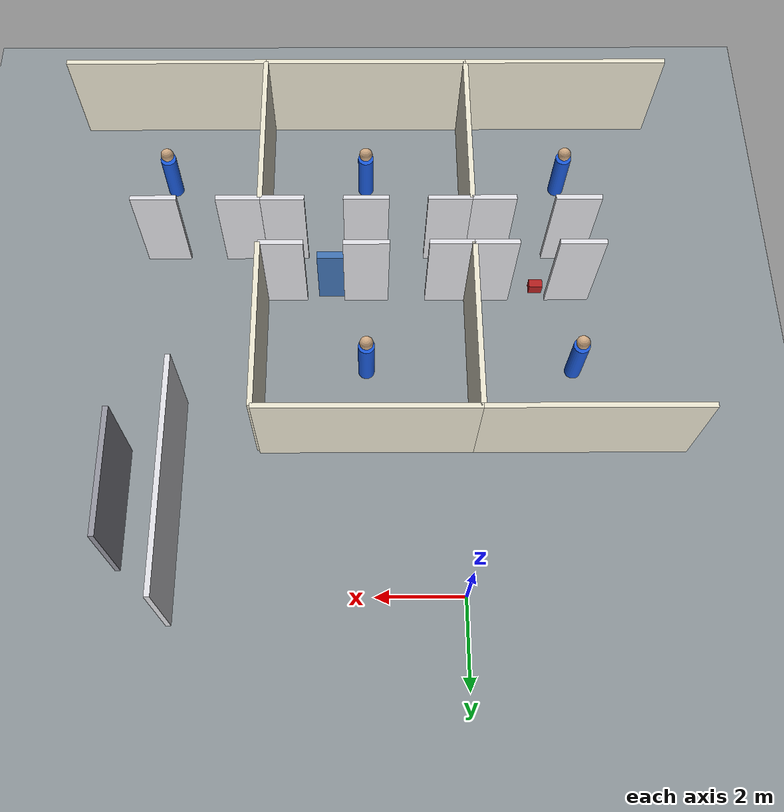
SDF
<sdf version="1.9">
 <world name="school_arena">
  <model name="ground">
   <static>true</static>
   <link name="link">
    <collision name="collision">
     <geometry><plane><normal>0 0 1</normal><size>80 80</size></plane></geometry>
    </collision>
    <visual name="visual">
     <geometry><plane><normal>0 0 1</normal><size>80 80</size></plane></geometry>
     <material><ambient>0.55 0.58 0.60 1</ambient><diffuse>0.55 0.58 0.60 1</diffuse></material>
    </visual>
   </link>
  </model>
  <model name="classroom_03_south">
   <static>true</static>
   <pose>-2.7500 -12.6000 1.3000 0 0 0</pose>
   <link name="link">
    <collision name="collision"><geometry><box><size>4.9000 0.1200 2.6000</size></box></geometry></collision>
    <visual name="visual">
     <geometry><box><size>4.9000 0.1200 2.6000</size></box></geometry>
     <material><ambient>0.92 0.90 0.82 1</ambient><diffuse>0.92 0.90 0.82 1</diffuse></material>
    </visual>
   </link>
  </model>
  <model name="classroom_03_east">
   <static>true</static>
   <pose>-0.3000 -10.6000 1.3000 0 0 0</pose>
   <link name="link">
    <collision name="collision"><geometry><box><size>0.1200 4.0000 2.6000</size></box></geometry></collision>
    <visual name="visual">
     <geometry><box><size>0.1200 4.0000 2.6000</size></box></geometry>
     <material><ambient>0.92 0.90 0.82 1</ambient><diffuse>0.92 0.90 0.82 1</diffuse></material>
    </visual>
   </link>
  </model>
  <model name="classroom_03_front_1">
   <static>true</static>
   <pose>-2.7500 -8.6000 1.3000 0 0 0</pose>
   <link name="link">
    <collision name="collision"><geometry><box><size>1.0600 0.1200 2.6000</size></box></geometry></collision>
    <visual name="visual">
     <geometry><box><size>1.0600 0.1200 2.6000</size></box></geometry>
     <material><ambient>0.88 0.88 0.90 1</ambient><diffuse>0.88 0.88 0.90 1</diffuse></material>
    </visual>
   </link>
  </model>
  <model name="classroom_03_front_2">
   <static>true</static>
   <pose>-0.8100 -8.6000 1.3000 0 0 0</pose>
   <link name="link">
    <collision name="collision"><geometry><box><size>1.0200 0.1200 2.6000</size></box></geometry></collision>
    <visual name="visual">
     <geometry><box><size>1.0200 0.1200 2.6000</size></box></geometry>
     <material><ambient>0.88 0.88 0.90 1</ambient><diffuse>0.88 0.88 0.90 1</diffuse></material>
    </visual>
   </link>
  </model>
  <model name="classroom_04_south">
   <static>true</static>
   <pose>2.1500 -12.6000 1.3000 0 0 0</pose>
   <link name="link">
    <collision name="collision"><geometry><box><size>4.9000 0.1200 2.6000</size></box></geometry></collision>
    <visual name="visual">
     <geometry><box><size>4.9000 0.1200 2.6000</size></box></geometry>
     <material><ambient>0.92 0.90 0.82 1</ambient><diffuse>0.92 0.90 0.82 1</diffuse></material>
    </visual>
   </link>
  </model>
  <model name="classroom_04_west">
   <static>true</static>
   <pose>-0.3000 -10.6000 1.3000 0 0 0</pose>
   <link name="link">
    <collision name="collision"><geometry><box><size>0.1200 4.0000 2.6000</size></box></geometry></collision>
    <visual name="visual">
     <geometry><box><size>0.1200 4.0000 2.6000</size></box></geometry>
     <material><ambient>0.92 0.90 0.82 1</ambient><diffuse>0.92 0.90 0.82 1</diffuse></material>
    </visual>
   </link>
  </model>
  <model name="classroom_04_east">
   <static>true</static>
   <pose>4.6000 -10.6000 1.3000 0 0 0</pose>
   <link name="link">
    <collision name="collision"><geometry><box><size>0.1200 4.0000 2.6000</size></box></geometry></collision>
    <visual name="visual">
     <geometry><box><size>0.1200 4.0000 2.6000</size></box></geometry>
     <material><ambient>0.92 0.90 0.82 1</ambient><diffuse>0.92 0.90 0.82 1</diffuse></material>
    </visual>
   </link>
  </model>
  <model name="classroom_04_front_0">
   <static>true</static>
   <pose>0.2100 -8.6000 1.3000 0 0 0</pose>
   <link name="link">
    <collision name="collision"><geometry><box><size>1.0200 0.1200 2.6000</size></box></geometry></collision>
    <visual name="visual">
     <geometry><box><size>1.0200 0.1200 2.6000</size></box></geometry>
     <material><ambient>0.88 0.88 0.90 1</ambient><diffuse>0.88 0.88 0.90 1</diffuse></material>
    </visual>
   </link>
  </model>
  <model name="classroom_04_front_1">
   <static>true</static>
   <pose>2.1500 -8.6000 1.3000 0 0 0</pose>
   <link name="link">
    <collision name="collision"><geometry><box><size>1.0600 0.1200 2.6000</size></box></geometry></collision>
    <visual name="visual">
     <geometry><box><size>1.0600 0.1200 2.6000</size></box></geometry>
     <material><ambient>0.88 0.88 0.90 1</ambient><diffuse>0.88 0.88 0.90 1</diffuse></material>
    </visual>
   </link>
  </model>
  <model name="classroom_04_front_2">
   <static>true</static>
   <pose>4.0900 -8.6000 1.3000 0 0 0</pose>
   <link name="link">
    <collision name="collision"><geometry><box><size>1.0200 0.1200 2.6000</size></box></geometry></collision>
    <visual name="visual">
     <geometry><box><size>1.0200 0.1200 2.6000</size></box></geometry>
     <material><ambient>0.88 0.88 0.90 1</ambient><diffuse>0.88 0.88 0.90 1</diffuse></material>
    </visual>
   </link>
  </model>
  <model name="classroom_05_south">
   <static>true</static>
   <pose>7.0500 -12.6000 1.3000 0 0 0</pose>
   <link name="link">
    <collision name="collision"><geometry><box><size>4.9000 0.1200 2.6000</size></box></geometry></collision>
    <visual name="visual">
     <geometry><box><size>4.9000 0.1200 2.6000</size></box></geometry>
     <material><ambient>0.92 0.90 0.82 1</ambient><diffuse>0.92 0.90 0.82 1</diffuse></material>
    </visual>
   </link>
  </model>
  <model name="classroom_05_west">
   <static>true</static>
   <pose>4.6000 -10.6000 1.3000 0 0 0</pose>
   <link name="link">
    <collision name="collision"><geometry><box><size>0.1200 4.0000 2.6000</size></box></geometry></collision>
    <visual name="visual">
     <geometry><box><size>0.1200 4.0000 2.6000</size></box></geometry>
     <material><ambient>0.92 0.90 0.82 1</ambient><diffuse>0.92 0.90 0.82 1</diffuse></material>
    </visual>
   </link>
  </model>
  <model name="classroom_05_front_0">
   <static>true</static>
   <pose>5.1100 -8.6000 1.3000 0 0 0</pose>
   <link name="link">
    <collision name="collision"><geometry><box><size>1.0200 0.1200 2.6000</size></box></geometry></collision>
    <visual name="visual">
     <geometry><box><size>1.0200 0.1200 2.6000</size></box></geometry>
     <material><ambient>0.88 0.88 0.90 1</ambient><diffuse>0.88 0.88 0.90 1</diffuse></material>
    </visual>
   </link>
  </model>
  <model name="classroom_05_front_1">
   <static>true</static>
   <pose>7.0500 -8.6000 1.3000 0 0 0</pose>
   <link name="link">
    <collision name="collision"><geometry><box><size>1.0600 0.1200 2.6000</size></box></geometry></collision>
    <visual name="visual">
     <geometry><box><size>1.0600 0.1200 2.6000</size></box></geometry>
     <material><ambient>0.88 0.88 0.90 1</ambient><diffuse>0.88 0.88 0.90 1</diffuse></material>
    </visual>
   </link>
  </model>
  <model name="classroom_09_north">
   <static>true</static>
   <pose>-2.7500 -3.4000 1.3000 0 0 0</pose>
   <link name="link">
    <collision name="collision"><geometry><box><size>4.9000 0.1200 2.6000</size></box></geometry></collision>
    <visual name="visual">
     <geometry><box><size>4.9000 0.1200 2.6000</size></box></geometry>
     <material><ambient>0.92 0.90 0.82 1</ambient><diffuse>0.92 0.90 0.82 1</diffuse></material>
    </visual>
   </link>
  </model>
  <model name="classroom_09_east">
   <static>true</static>
   <pose>-0.3000 -5.4000 1.3000 0 0 0</pose>
   <link name="link">
    <collision name="collision"><geometry><box><size>0.1200 4.0000 2.6000</size></box></geometry></collision>
    <visual name="visual">
     <geometry><box><size>0.1200 4.0000 2.6000</size></box></geometry>
     <material><ambient>0.92 0.90 0.82 1</ambient><diffuse>0.92 0.90 0.82 1</diffuse></material>
    </visual>
   </link>
  </model>
  <model name="classroom_09_front_1">
   <static>true</static>
   <pose>-2.7500 -7.4000 1.3000 0 0 0</pose>
   <link name="link">
    <collision name="collision"><geometry><box><size>1.0600 0.1200 2.6000</size></box></geometry></collision>
    <visual name="visual">
     <geometry><box><size>1.0600 0.1200 2.6000</size></box></geometry>
     <material><ambient>0.88 0.88 0.90 1</ambient><diffuse>0.88 0.88 0.90 1</diffuse></material>
    </visual>
   </link>
  </model>
  <model name="classroom_09_front_2">
   <static>true</static>
   <pose>-0.8100 -7.4000 1.3000 0 0 0</pose>
   <link name="link">
    <collision name="collision"><geometry><box><size>1.0200 0.1200 2.6000</size></box></geometry></collision>
    <visual name="visual">
     <geometry><box><size>1.0200 0.1200 2.6000</size></box></geometry>
     <material><ambient>0.88 0.88 0.90 1</ambient><diffuse>0.88 0.88 0.90 1</diffuse></material>
    </visual>
   </link>
  </model>
  <model name="classroom_10_north">
   <static>true</static>
   <pose>2.1500 -3.4000 1.3000 0 0 0</pose>
   <link name="link">
    <collision name="collision"><geometry><box><size>4.9000 0.1200 2.6000</size></box></geometry></collision>
    <visual name="visual">
     <geometry><box><size>4.9000 0.1200 2.6000</size></box></geometry>
     <material><ambient>0.92 0.90 0.82 1</ambient><diffuse>0.92 0.90 0.82 1</diffuse></material>
    </visual>
   </link>
  </model>
  <model name="classroom_10_west">
   <static>true</static>
   <pose>-0.3000 -5.4000 1.3000 0 0 0</pose>
   <link name="link">
    <collision name="collision"><geometry><box><size>0.1200 4.0000 2.6000</size></box></geometry></collision>
    <visual name="visual">
     <geometry><box><size>0.1200 4.0000 2.6000</size></box></geometry>
     <material><ambient>0.92 0.90 0.82 1</ambient><diffuse>0.92 0.90 0.82 1</diffuse></material>
    </visual>
   </link>
  </model>
  <model name="classroom_10_east">
   <static>true</static>
   <pose>4.6000 -5.4000 1.3000 0 0 0</pose>
   <link name="link">
    <collision name="collision"><geometry><box><size>0.1200 4.0000 2.6000</size></box></geometry></collision>
    <visual name="visual">
     <geometry><box><size>0.1200 4.0000 2.6000</size></box></geometry>
     <material><ambient>0.92 0.90 0.82 1</ambient><diffuse>0.92 0.90 0.82 1</diffuse></material>
    </visual>
   </link>
  </model>
  <model name="classroom_10_front_0">
   <static>true</static>
   <pose>0.2100 -7.4000 1.3000 0 0 0</pose>
   <link name="link">
    <collision name="collision"><geometry><box><size>1.0200 0.1200 2.6000</size></box></geometry></collision>
    <visual name="visual">
     <geometry><box><size>1.0200 0.1200 2.6000</size></box></geometry>
     <material><ambient>0.88 0.88 0.90 1</ambient><diffuse>0.88 0.88 0.90 1</diffuse></material>
    </visual>
   </link>
  </model>
  <model name="classroom_10_front_1">
   <static>true</static>
   <pose>2.1500 -7.4000 1.3000 0 0 0</pose>
   <link name="link">
    <collision name="collision"><geometry><box><size>1.0600 0.1200 2.6000</size></box></geometry></collision>
    <visual name="visual">
     <geometry><box><size>1.0600 0.1200 2.6000</size></box></geometry>
     <material><ambient>0.88 0.88 0.90 1</ambient><diffuse>0.88 0.88 0.90 1</diffuse></material>
    </visual>
   </link>
  </model>
  <model name="classroom_10_front_2">
   <static>true</static>
   <pose>4.0900 -7.4000 1.3000 0 0 0</pose>
   <link name="link">
    <collision name="collision"><geometry><box><size>1.0200 0.1200 2.6000</size></box></geometry></collision>
    <visual name="visual">
     <geometry><box><size>1.0200 0.1200 2.6000</size></box></geometry>
     <material><ambient>0.88 0.88 0.90 1</ambient><diffuse>0.88 0.88 0.90 1</diffuse></material>
    </visual>
   </link>
  </model>
  <model name="corridor_D_outer_west">
   <static>true</static>
   <pose>6.4000 -2.0000 1.3000 0 0 0</pose>
   <link name="link">
    <collision name="collision"><geometry><box><size>0.1200 5.2000 2.6000</size></box></geometry></collision>
    <visual name="visual">
     <geometry><box><size>0.1200 5.2000 2.6000</size></box></geometry>
     <material><ambient>0.88 0.88 0.90 1</ambient><diffuse>0.88 0.88 0.90 1</diffuse></material>
    </visual>
   </link>
  </model>
  <model name="stairs_west_wall">
   <static>true</static>
   <pose>7.6000 -2.0000 1.3000 0 0 0</pose>
   <link name="link">
    <collision name="collision"><geometry><box><size>0.1200 2.8000 2.6000</size></box></geometry></collision>
    <visual name="visual">
     <geometry><box><size>0.1200 2.8000 2.6000</size></box></geometry>
     <material><ambient>0.58 0.58 0.62 1</ambient><diffuse>0.58 0.58 0.62 1</diffuse></material>
    </visual>
   </link>
  </model>
  <model name="bench_02">
   <static>true</static>
   <pose>-0.3000 -8.4300 0.2250 0.0000 0.0000 0.0000</pose>
   <link name="link">
    <collision name="collision"><geometry><box><size>1.4000 0.2000 0.4500</size></box></geometry></collision>
    <visual name="visual">
     <geometry><box><size>1.4000 0.2000 0.4500</size></box></geometry>
     <material><ambient>0.45 0.28 0.12 1</ambient><diffuse>0.45 0.28 0.12 1</diffuse></material>
    </visual>
   </link>
  </model>
  <model name="locker_02">
   <static>true</static>
   <pose>2.6000 -7.5500 0.9000 0 0 0</pose>
   <link name="link">
    <collision name="collision"><geometry><box><size>1.4000 0.1800 1.8000</size></box></geometry></collision>
    <visual name="visual">
     <geometry><box><size>1.4000 0.1800 1.8000</size></box></geometry>
     <material><ambient>0.25 0.45 0.70 1</ambient><diffuse>0.25 0.45 0.70 1</diffuse></material>
    </visual>
   </link>
  </model>
  <model name="backpack_01">
   <static>true</static>
   <pose>-2.0000 -7.6500 0.1400 0.0000 0.0000 0.0000</pose>
   <link name="link">
    <collision name="collision"><geometry><box><size>0.3200 0.2200 0.2800</size></box></geometry></collision>
    <visual name="visual">
     <geometry><box><size>0.3200 0.2200 0.2800</size></box></geometry>
     <material><ambient>0.70 0.12 0.12 1</ambient><diffuse>0.70 0.12 0.12 1</diffuse></material>
    </visual>
   </link>
  </model>
  <model name="notice_board">
   <static>true</static>
   <pose>6.5200 -1.7000 1.2000 0 0 0</pose>
   <link name="link">
    <collision name="collision"><geometry><box><size>0.1000 1.3000 1.0000</size></box></geometry></collision>
    <visual name="visual">
     <geometry><box><size>0.1000 1.3000 1.0000</size></box></geometry>
     <material><ambient>0.18 0.55 0.35 1</ambient><diffuse>0.18 0.55 0.35 1</diffuse></material>
    </visual>
   </link>
  </model>
  <model name="event_agent_1">
   <static>false</static>
   <pose>0.00935 -7.90666 0.000 0 0 -2.978066</pose>
   <link name="base_link">
    <kinematic>true</kinematic>
    <gravity>false</gravity>
    <inertial>
     <mass>8.0</mass>
     <inertia><ixx>12.0</ixx><ixy>0</ixy><ixz>0</ixz><iyy>12.0</iyy><iyz>0</iyz><izz>0.45</izz></inertia>
    </inertial>
    <visual name="body">
     <geometry><cylinder><radius>0.19</radius><length>1.35</length></cylinder></geometry>
     <pose>0 0 0.675 0 0 0</pose>
     <material><ambient>0.10 0.35 0.85 1</ambient><diffuse>0.10 0.35 0.85 1</diffuse></material>
    </visual>
    <visual name="head">
     <pose>0 0 1.510 0 0 0</pose>
     <geometry><sphere><radius>0.16</radius></sphere></geometry>
     <material><ambient>0.82 0.67 0.52 1</ambient><diffuse>0.82 0.67 0.52 1</diffuse></material>
    </visual>
   </link>
  </model>
  <model name="background_agent_2">
   <static>false</static>
   <pose>-2.75000 -5.40000 0.000 0 0 -2.093735</pose>
   <link name="base_link">
    <kinematic>true</kinematic>
    <gravity>false</gravity>
    <inertial>
     <mass>8.0</mass>
     <inertia><ixx>12.0</ixx><ixy>0</ixy><ixz>0</ixz><iyy>12.0</iyy><iyz>0</iyz><izz>0.45</izz></inertia>
    </inertial>
    <visual name="body">
     <geometry><cylinder><radius>0.19</radius><length>1.35</length></cylinder></geometry>
     <pose>0 0 0.675 0 0 0</pose>
     <material><ambient>0.10 0.35 0.85 1</ambient><diffuse>0.10 0.35 0.85 1</diffuse></material>
    </visual>
    <visual name="head">
     <pose>0 0 1.510 0 0 0</pose>
     <geometry><sphere><radius>0.16</radius></sphere></geometry>
     <material><ambient>0.82 0.67 0.52 1</ambient><diffuse>0.82 0.67 0.52 1</diffuse></material>
    </visual>
   </link>
  </model>
  <model name="background_agent_5">
   <static>false</static>
   <pose>2.15000 -10.60000 0.000 0 0 2.093735</pose>
   <link name="base_link">
    <kinematic>true</kinematic>
    <gravity>false</gravity>
    <inertial>
     <mass>8.0</mass>
     <inertia><ixx>12.0</ixx><ixy>0</ixy><ixz>0</ixz><iyy>12.0</iyy><iyz>0</iyz><izz>0.45</izz></inertia>
    </inertial>
    <visual name="body">
     <geometry><cylinder><radius>0.19</radius><length>1.35</length></cylinder></geometry>
     <pose>0 0 0.675 0 0 0</pose>
     <material><ambient>0.10 0.35 0.85 1</ambient><diffuse>0.10 0.35 0.85 1</diffuse></material>
    </visual>
    <visual name="head">
     <pose>0 0 1.510 0 0 0</pose>
     <geometry><sphere><radius>0.16</radius></sphere></geometry>
     <material><ambient>0.82 0.67 0.52 1</ambient><diffuse>0.82 0.67 0.52 1</diffuse></material>
    </visual>
   </link>
  </model>
  <model name="background_agent_8">
   <static>false</static>
   <pose>7.05000 -10.60000 0.000 0 0 2.093735</pose>
   <link name="base_link">
    <kinematic>true</kinematic>
    <gravity>false</gravity>
    <inertial>
     <mass>8.0</mass>
     <inertia><ixx>12.0</ixx><ixy>0</ixy><ixz>0</ixz><iyy>12.0</iyy><iyz>0</iyz><izz>0.45</izz></inertia>
    </inertial>
    <visual name="body">
     <geometry><cylinder><radius>0.19</radius><length>1.35</length></cylinder></geometry>
     <pose>0 0 0.675 0 0 0</pose>
     <material><ambient>0.10 0.35 0.85 1</ambient><diffuse>0.10 0.35 0.85 1</diffuse></material>
    </visual>
    <visual name="head">
     <pose>0 0 1.510 0 0 0</pose>
     <geometry><sphere><radius>0.16</radius></sphere></geometry>
     <material><ambient>0.82 0.67 0.52 1</ambient><diffuse>0.82 0.67 0.52 1</diffuse></material>
    </visual>
   </link>
  </model>
  <model name="background_agent_9">
   <static>false</static>
   <pose>-2.75000 -10.60000 0.000 0 0 2.093735</pose>
   <link name="base_link">
    <kinematic>true</kinematic>
    <gravity>false</gravity>
    <inertial>
     <mass>8.0</mass>
     <inertia><ixx>12.0</ixx><ixy>0</ixy><ixz>0</ixz><iyy>12.0</iyy><iyz>0</iyz><izz>0.45</izz></inertia>
    </inertial>
    <visual name="body">
     <geometry><cylinder><radius>0.19</radius><length>1.35</length></cylinder></geometry>
     <pose>0 0 0.675 0 0 0</pose>
     <material><ambient>0.10 0.35 0.85 1</ambient><diffuse>0.10 0.35 0.85 1</diffuse></material>
    </visual>
    <visual name="head">
     <pose>0 0 1.510 0 0 0</pose>
     <geometry><sphere><radius>0.16</radius></sphere></geometry>
     <material><ambient>0.82 0.67 0.52 1</ambient><diffuse>0.82 0.67 0.52 1</diffuse></material>
    </visual>
   </link>
  </model>
  <model name="background_agent_10">
   <static>false</static>
   <pose>2.15000 -5.40000 0.000 0 0 -2.093735</pose>
   <link name="base_link">
    <kinematic>true</kinematic>
    <gravity>false</gravity>
    <inertial>
     <mass>8.0</mass>
     <inertia><ixx>12.0</ixx><ixy>0</ixy><ixz>0</ixz><iyy>12.0</iyy><iyz>0</iyz><izz>0.45</izz></inertia>
    </inertial>
    <visual name="body">
     <geometry><cylinder><radius>0.19</radius><length>1.35</length></cylinder></geometry>
     <pose>0 0 0.675 0 0 0</pose>
     <material><ambient>0.10 0.35 0.85 1</ambient><diffuse>0.10 0.35 0.85 1</diffuse></material>
    </visual>
    <visual name="head">
     <pose>0 0 1.510 0 0 0</pose>
     <geometry><sphere><radius>0.16</radius></sphere></geometry>
     <material><ambient>0.82 0.67 0.52 1</ambient><diffuse>0.82 0.67 0.52 1</diffuse></material>
    </visual>
   </link>
  </model>
 </world>
</sdf>
